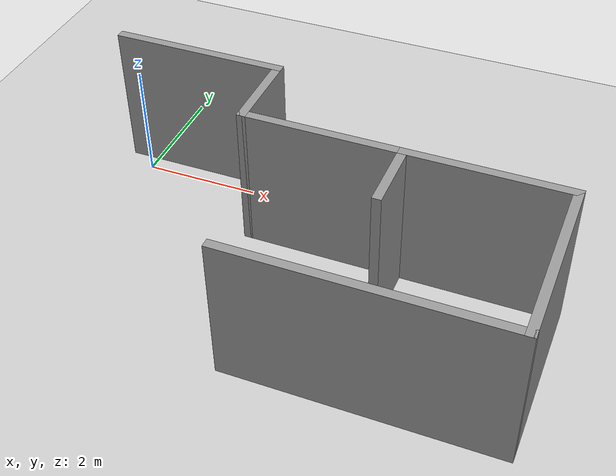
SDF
<sdf version="1.7">
 <world name="default">
  <model name="ground_plane">
   <static>1</static>
   <link name="link">
    <collision name="collision">
     <geometry><plane><normal>0 0 1</normal><size>100 100</size></plane></geometry>
     <surface><friction><ode><mu>100</mu><mu2>50</mu2></ode></friction></surface>
    </collision>
    <visual name="visual">
     <cast_shadows>0</cast_shadows>
     <geometry><plane><normal>0 0 1</normal><size>100 100</size></plane></geometry>
     <material>
      <script><uri>file://media/materials/scripts/gazebo.material</uri><name>Gazebo/Grey</name></script>
     </material>
    </visual>
   </link>
  </model>
  <light name="sun" type="directional">
   <pose>0 0 10 0 -0 0</pose>
   <diffuse>0.8 0.8 0.8 1</diffuse>
   <specular>0.2 0.2 0.2 1</specular>
   <attenuation>
    <range>1000</range>
    <constant>0.9</constant>
    <linear>0.01</linear>
    <quadratic>0.001</quadratic>
   </attenuation>
   <direction>-0.5 0.1 -0.9</direction>
   <spot><inner_angle>0</inner_angle><outer_angle>0</outer_angle><falloff>0</falloff></spot>
  </light>
  <scene><shadows>0</shadows><ambient>0.4 0.4 0.4 1</ambient><background>0.7 0.7 0.7 1</background></scene>
  <physics type="ode">
   <real_time_update_rate>1000</real_time_update_rate>
   <max_step_size>0.001</max_step_size>
   <real_time_factor>1</real_time_factor>
   <ode>
    <solver>
     <type>quick</type>
     <iters>150</iters>
     <precon_iters>0</precon_iters>
     <sor>1.4</sor>
     <use_dynamic_moi_rescaling>1</use_dynamic_moi_rescaling>
    </solver>
    <constraints>
     <cfm>1e-05</cfm>
     <erp>0.2</erp>
     <contact_max_correcting_vel>2000</contact_max_correcting_vel>
     <contact_surface_layer>0.01</contact_surface_layer>
    </constraints>
   </ode>
  </physics>
  <gravity>0 0 -9.8</gravity>
  <magnetic_field>6e-06 2.3e-05 -4.2e-05</magnetic_field>
  <atmosphere type="adiabatic"/>
  <audio><device>default</device></audio>
  <spherical_coordinates>
   <surface_model>EARTH_WGS84</surface_model>
   <latitude_deg>0</latitude_deg>
   <longitude_deg>0</longitude_deg>
   <elevation>0</elevation>
   <heading_deg>0</heading_deg>
  </spherical_coordinates>
  <model name="Maze8">
   <pose>3.59747 -1.76227 0 0 -0 0</pose>
   <link name="Wall_0">
    <collision name="Wall_0_Collision">
     <geometry><box><size>3 0.15 2.5</size></box></geometry>
     <pose>0 0 1.25 0 -0 0</pose>
    </collision>
    <visual name="Wall_0_Visual">
     <pose>0 0 1.25 0 -0 0</pose>
     <geometry><box><size>3 0.15 2.5</size></box></geometry>
     <material>
      <script><uri>file://media/materials/scripts/gazebo.material</uri><name>Gazebo/Grey</name></script>
      <ambient>1 1 1 1</ambient>
     </material>
     <meta><layer>0</layer></meta>
    </visual>
    <pose>-2.6 2.1 0 0 -0 0</pose>
   </link>
   <link name="Wall_2">
    <collision name="Wall_2_Collision">
     <geometry><box><size>1.5 0.15 2.5</size></box></geometry>
     <pose>0 0 1.25 0 -0 0</pose>
    </collision>
    <visual name="Wall_2_Visual">
     <pose>0 0 1.25 0 -0 0</pose>
     <geometry><box><size>1.5 0.15 2.5</size></box></geometry>
     <material>
      <script><uri>file://media/materials/scripts/gazebo.material</uri><name>Gazebo/Grey</name></script>
      <ambient>1 1 1 1</ambient>
     </material>
     <meta><layer>0</layer></meta>
    </visual>
    <pose>-1.175 1.425 0 0 -0 -1.5708</pose>
   </link>
   <link name="Wall_3">
    <collision name="Wall_3_Collision">
     <geometry><box><size>2.75 0.15 2.5</size></box></geometry>
     <pose>0 0 1.25 0 -0 0</pose>
    </collision>
    <visual name="Wall_3_Visual">
     <pose>0 0 1.25 0 -0 0</pose>
     <geometry><box><size>2.75 0.15 2.5</size></box></geometry>
     <material>
      <script><uri>file://media/materials/scripts/gazebo.material</uri><name>Gazebo/Grey</name></script>
      <ambient>1 1 1 1</ambient>
     </material>
     <meta><layer>0</layer></meta>
    </visual>
    <pose>0.125 0.75 0 0 -0 0</pose>
   </link>
   <link name="Wall_4">
    <collision name="Wall_4_Collision">
     <geometry><box><size>1.25 0.15 2.5</size></box></geometry>
     <pose>0 0 1.25 0 -0 0</pose>
    </collision>
    <visual name="Wall_4_Visual">
     <pose>0 0 1.25 0 -0 0</pose>
     <geometry><box><size>1.25 0.15 2.5</size></box></geometry>
     <material>
      <script><uri>file://media/materials/scripts/gazebo.material</uri><name>Gazebo/Grey</name></script>
      <ambient>1 1 1 1</ambient>
     </material>
     <meta><layer>0</layer></meta>
    </visual>
    <pose>1.425 0.2 0 0 -0 -1.5708</pose>
   </link>
   <link name="Wall_6">
    <collision name="Wall_6_Collision">
     <geometry><box><size>2.75 0.15 2.5</size></box></geometry>
     <pose>0 0 1.25 0 -0 0</pose>
    </collision>
    <visual name="Wall_6_Visual">
     <pose>0 0 1.25 0 -0 0</pose>
     <geometry><box><size>2.75 0.15 2.5</size></box></geometry>
     <material>
      <script><uri>file://media/materials/scripts/gazebo.material</uri><name>Gazebo/Grey</name></script>
      <ambient>1 1 1 1</ambient>
     </material>
     <meta><layer>0</layer></meta>
    </visual>
    <pose>2.725 0.75 0 0 -0 0</pose>
   </link>
   <link name="Wall_7">
    <collision name="Wall_7_Collision">
     <geometry><box><size>3 0.15 2.5</size></box></geometry>
     <pose>0 0 1.25 0 -0 0</pose>
    </collision>
    <visual name="Wall_7_Visual">
     <pose>0 0 1.25 0 -0 0</pose>
     <geometry><box><size>3 0.15 2.5</size></box></geometry>
     <material>
      <script><uri>file://media/materials/scripts/gazebo.material</uri><name>Gazebo/Grey</name></script>
      <ambient>1 1 1 1</ambient>
     </material>
     <meta><layer>0</layer></meta>
    </visual>
    <pose>4.025 -0.675 0 0 -0 -1.5708</pose>
   </link>
   <link name="Wall_8">
    <collision name="Wall_8_Collision">
     <geometry><box><size>4.5 0.15 2.5</size></box></geometry>
     <pose>0 0 1.25 0 -0 0</pose>
    </collision>
    <visual name="Wall_8_Visual">
     <pose>0 0 1.25 0 -0 0</pose>
     <geometry><box><size>4.5 0.15 2.5</size></box></geometry>
     <material>
      <script><uri>file://media/materials/scripts/gazebo.material</uri><name>Gazebo/Grey</name></script>
      <ambient>1 1 1 1</ambient>
     </material>
     <meta><layer>0</layer></meta>
    </visual>
    <pose>1.85 -2.1 0 0 -0 3.14159</pose>
   </link>
   <static>1</static>
  </model>
 </world>
</sdf>
